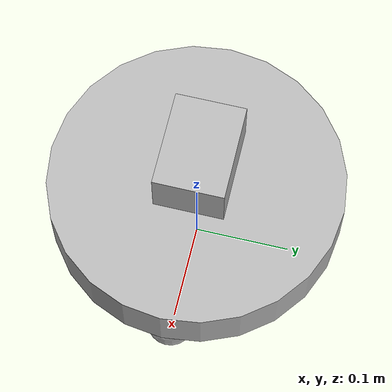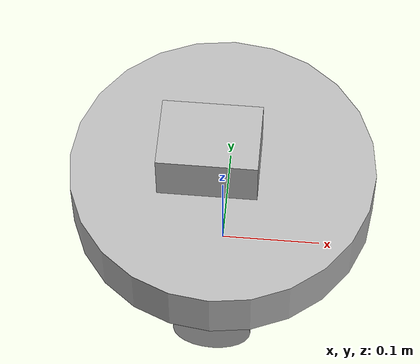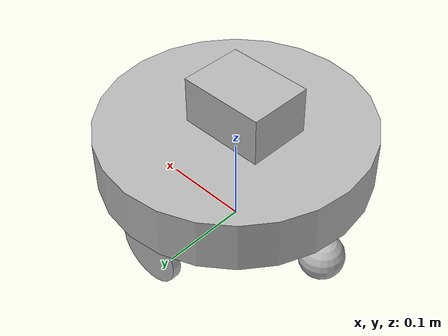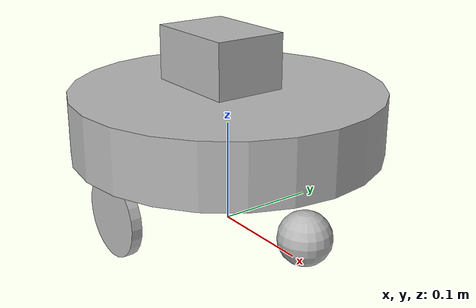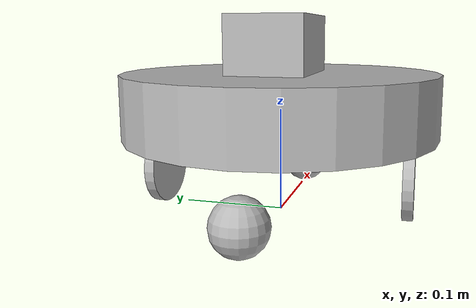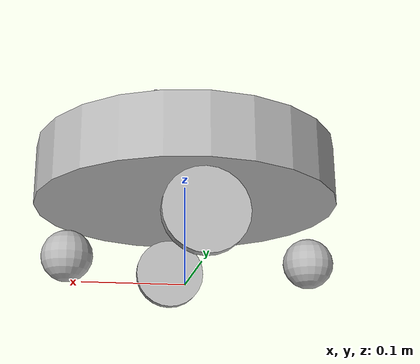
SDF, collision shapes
<?xml version="1.0" ?>

<sdf version="1.5">
    <model name="dede">
        <pose>0.0 0.0 0.0 0.0 0.0 0.0 </pose>
        <link name="base_link">
            <inertial>
                <pose>0.0 0 0.068 0 0 0</pose>
                <inertia>
                    <ixx>0.03815752</ixx>
                    <ixy>0.00009502</ixy>
                    <ixz>-0.00333401</ixz>
                    <iyy>0.03754338</iyy>
                    <iyz>0.00006971</iyz>
                    <izz>0.02037722</izz>
                </inertia>
                <mass>2.93633725</mass>
            </inertial>
            <collision name="base_collision">
                <pose>0.0 0 0.106 0 0 0</pose>
                <geometry>
                    <cylinder>
                        <radius>0.15</radius>
                        <length>0.06</length>
                    </cylinder>
                </geometry>
                <surface>
                    <friction>
                        <ode>
                            <mu>0.5</mu>
                            <mu2>0.5</mu2>
                        </ode>
                    </friction>
                </surface>
            </collision>
            <visual name="base_visual">
                <pose>0 0 0 0 0 0</pose>
                <geometry>
                    <mesh>
                        <uri>model://dede/meshes/base.stl</uri>
                        <scale>1 1 1</scale>
                    </mesh>
                </geometry>
            </visual>
        </link>

        <link name="lidar_link">
            <inertial>
                <pose>0 0 0.163 0 0 0</pose>
                <inertia>
                    <ixx>0.000001</ixx>
                    <ixy>0.000</ixy>
                    <ixz>0.000</ixz>
                    <iyy>0.000001</iyy>
                    <iyz>0.000</iyz>
                    <izz>0.000001</izz>
                </inertia>
                <mass>0.114</mass>
            </inertial>
            <collision name="lidar_collision">
                <pose>-0.0125 0 0.163 0 0 0</pose>
                <geometry>
                    <box>
                        <size>0.097488 0.071778 0.0535</size>
                    </box>
                </geometry>
            </collision>
            <visual name="lidar_visual">
                <pose>0 0 0.0 0 0 0</pose>
                <geometry>
                    <mesh>
                        <uri>model://dede/meshes/lidar.stl</uri>
                        <scale>1 1 1</scale>
                    </mesh>
                </geometry>
            </visual>
            <sensor name="rpi_a1" type="ray">
                <always_on>true</always_on>
                <visualize>false</visualize>
                <pose>0 0 0.18 0 0 0</pose>
                <update_rate>10</update_rate>
                <ray>
                <scan>
                    <horizontal>
                    <samples>360</samples>
                    <resolution>1.0</resolution>
                    <min_angle>0.0</min_angle>
                    <max_angle>6.28</max_angle>
                    </horizontal>
                </scan>
                <range>
                    <min>0.12</min>
                    <max>10.0</max>
                    <resolution>0.015000</resolution>
                </range>
                <noise>
                    <type>gaussian</type>
                    <mean>0.0</mean>
                    <stddev>0.01</stddev>
                </noise>
                </ray>
                <plugin name="dede_laserscan" filename="libgazebo_ros_ray_sensor.so">
                <ros>
                    <remapping>~/out:=scan</remapping>
                </ros>
                <output_type>sensor_msgs/LaserScan</output_type>
                <frame_name>lidar_link</frame_name>
                </plugin>
            </sensor>
        </link>

        <link name="left_wheel_link">
            <inertial>
                <pose>0 0.124 0.038 -1.57 0 0</pose>
                <inertia>
                    <ixx>0.0000645</ixx>
                    <ixy>0.000</ixy>
                    <ixz>0.000</ixz>
                    <iyy>0.0000645</iyy>
                    <iyz>0.000</iyz>
                    <izz>0.0001287</izz>
                </inertia>
                <mass>0.015</mass>
            </inertial>
            <collision name="left_wheel_collision">
                <pose>0 0.124 0.038 -1.57 0 0</pose>
                <geometry>
                    <cylinder>
                        <radius>0.038</radius>
                        <length>0.01</length>
                    </cylinder>
                </geometry>
                <surface>
                    <friction>
                        <ode>
                            <mu>0.9</mu>
                            <mu2>0.9</mu2>
                        </ode>
                    </friction>
                </surface>
            </collision>
            <visual name="left_wheel_visual">
                <pose>0 0.122 0.038 -1.57 0 0</pose>
                <geometry>
                    <mesh>
                        <uri>model://dede/meshes/wheel.stl</uri>
                        <scale>1 1 1</scale>
                    </mesh>
                </geometry>
            </visual>
        </link>

        <link name="right_wheel_link">
            <inertial>
                <pose>0 -0.124 0.038 -1.57 0 0</pose>
                <inertia>
                    <ixx>0.0000645</ixx>
                    <ixy>0.000</ixy>
                    <ixz>0.000</ixz>
                    <iyy>0.0000645</iyy>
                    <iyz>0.000</iyz>
                    <izz>0.0001287</izz>
                </inertia>
                <mass>0.015</mass>
            </inertial>
            <collision name="right_wheel_collision">
                <pose>0 -0.124 0.038 1.57 0 0</pose>
                <geometry>
                    <cylinder>
                        <radius>0.038</radius>
                        <length>0.01</length>
                    </cylinder>
                </geometry>
                <surface>
                    <friction>
                        <ode>
                            <mu>0.9</mu>
                            <mu2>0.9</mu2>
                        </ode>
                    </friction>
                </surface>
            </collision>
            <visual name="right_wheel_visual">
                <pose>0 -0.122 0.038 1.57 0 0</pose>
                <geometry>
                    <mesh>
                        <uri>model://dede/meshes/wheel.stl</uri>
                        <scale>1 1 1</scale>
                    </mesh>
                </geometry>
            </visual>
        </link>

        <link name="invisible_front_caster_link">
            <inertial>
                <pose>0.115 0 0.025 0 0 0</pose>
                <inertia>
                    <ixx>0.000001</ixx>
                    <ixy>0.000</ixy>
                    <ixz>0.000</ixz>
                    <iyy>0.000001</iyy>
                    <iyz>0.000</iyz>
                    <izz>0.000001</izz>
                </inertia>
                <mass>0.01</mass>
            </inertial>
            <collision name='invisible_front_caster_collision'>
                <pose>0.115 0 0.025 0 0 0</pose>
                <geometry>
                    <sphere>
                        <radius>0.025</radius>
                    </sphere>
                </geometry>
                <surface>
                    <friction>
                        <ode>
                            <mu>0.0</mu>
                            <mu2>0.0</mu2>
                        </ode>
                    </friction>
                </surface>
            </collision>
        </link>
        <link name="invisible_back_caster_link">
            <inertial>
                <pose>-0.125 0 0.025 0 0 0</pose>
                <inertia>
                    <ixx>0.000001</ixx>
                    <ixy>0.000</ixy>
                    <ixz>0.000</ixz>
                    <iyy>0.000001</iyy>
                    <iyz>0.000</iyz>
                    <izz>0.000001</izz>
                </inertia>
                <mass>0.01</mass>
            </inertial>
            <collision name='invisible_back_caster_collision'>
                <pose>-0.125 0 0.025 0 0 0</pose>
                <geometry>
                    <sphere>
                        <radius>0.025</radius>
                    </sphere>
                </geometry>
                <surface>
                    <friction>
                        <ode>
                            <mu>0.0</mu>
                            <mu2>0.0</mu2>
                        </ode>
                    </friction>
                </surface>
            </collision>
        </link>

        <joint name="lidar_joint" type="fixed">
            <parent>base_link</parent>
            <child>lidar_link</child>
            <pose>0 0 0.163 0 0 0</pose>
        </joint>
        <joint name="left_wheel_joint" type="revolute">
            <parent>base_link</parent>
            <child>left_wheel_link</child>
            <pose>0 0.124 0.038 -1.57 0 0</pose>
            <axis>
                <xyz>0 0 1</xyz>
            </axis>
            <limit>
                <effort>0.25</effort>
            </limit>
        </joint>
        <joint name="right_wheel_joint" type="revolute">
            <parent>base_link</parent>
            <child>right_wheel_link</child>
            <pose>0 -0.124 0.038 -1.57 0 0</pose>
            <axis>
                <xyz>0 0 1</xyz>
            </axis>
            <limit>
                <effort>0.25</effort>
            </limit>
        </joint>
        <joint name="invisible_front_caster_joint" type="ball">
            <parent>base_link</parent>
            <child>invisible_front_caster_link</child>
            <pose>0.115 0 0.025 0 0 0</pose>
        </joint>
        <joint name="invisible_back_caster_joint" type="ball">
            <parent>base_link</parent>
            <child>invisible_back_caster_link</child>
            <pose>-0.125 0 0.025 0 0 0</pose>
        </joint>

        <plugin name="dede_diff_drive" filename="libgazebo_ros_diff_drive.so">
            <update_rate>50</update_rate>
            <ros>
                <remapping>/tf:=tf</remapping>
            </ros>
            <left_joint>left_wheel_joint</left_joint>
            <right_joint>right_wheel_joint</right_joint>
            <wheel_separation>0.248</wheel_separation>
            <wheel_diameter>0.076</wheel_diameter>
            <max_wheel_torque>0.5</max_wheel_torque>
            <max_wheel_acceleration>2.0</max_wheel_acceleration>
            <command_topic>cmd_vel</command_topic>
            <publish_odom>true</publish_odom>
            <publish_odom_tf>true</publish_odom_tf>
            <publish_wheel_tf>false</publish_wheel_tf>

            <odometry_topic>odom</odometry_topic>
            <odometry_frame>odom</odometry_frame>
            <robot_base_frame>base_link</robot_base_frame>
        </plugin>

        <plugin name="dede_joint_state" filename="libgazebo_ros_joint_state_publisher.so">
            <ros>
                <remapping>~/out:=joint_states</remapping>
            </ros>
            <update_rate>50</update_rate>
            <joint_name>left_wheel_joint</joint_name>
            <joint_name>right_wheel_joint</joint_name>
        </plugin>
    </model>
</sdf>
